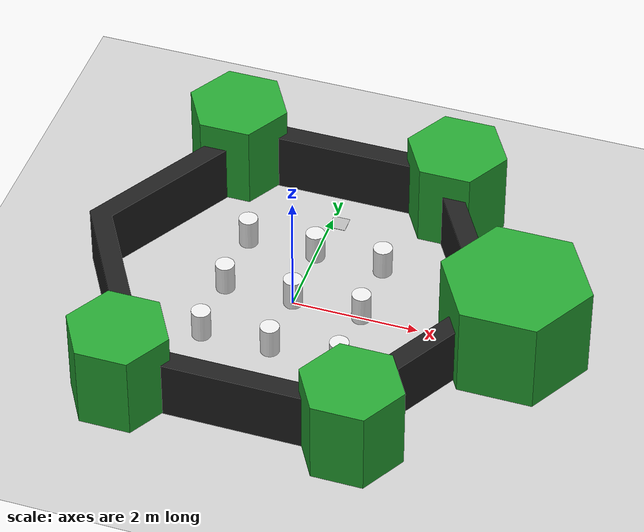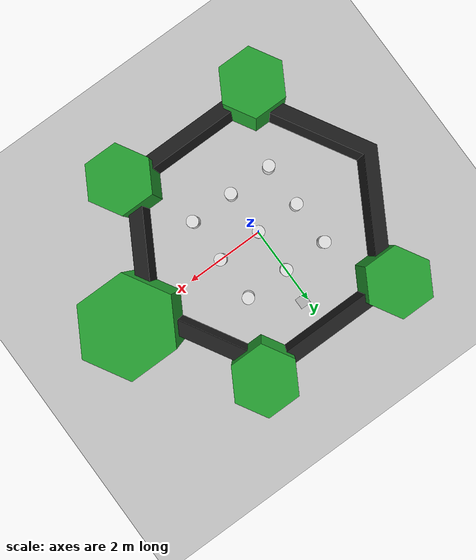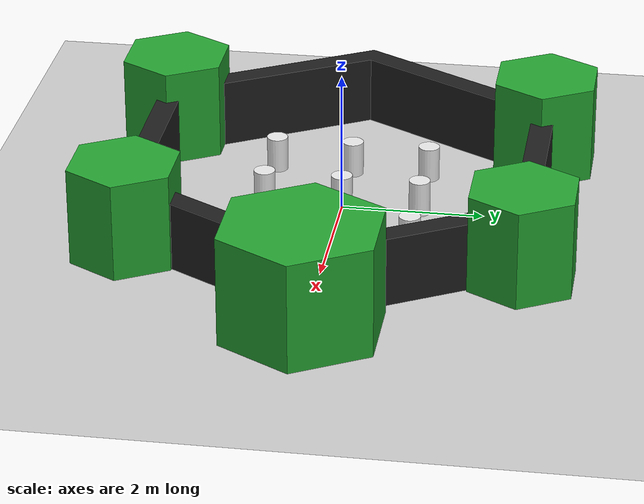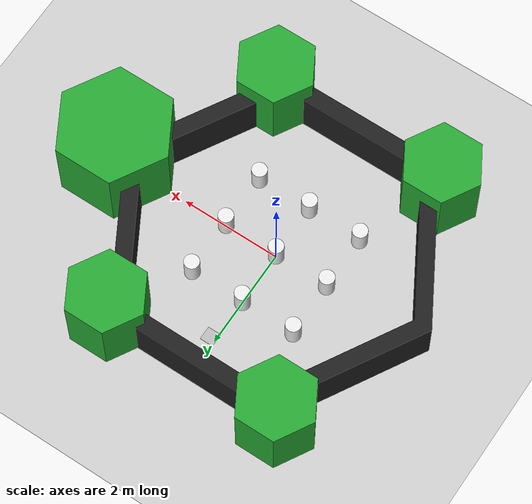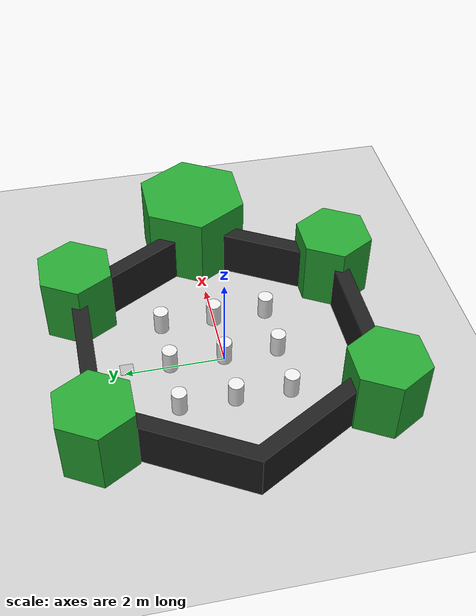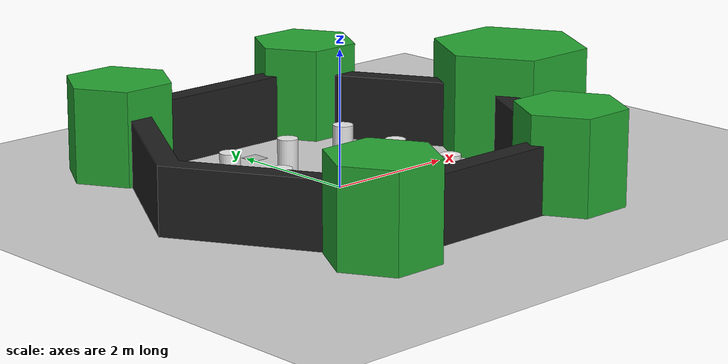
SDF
<sdf version="1.7">
 <world name="aruco_world">
  <light name="sun" type="directional">
   <pose>0 0 10 0 -0 0</pose>
   <diffuse>0.8 0.8 0.8 1</diffuse>
   <specular>0.2 0.2 0.2 1</specular>
   <attenuation>
    <range>1000</range>
    <constant>0.9</constant>
    <linear>0.01</linear>
    <quadratic>0.001</quadratic>
   </attenuation>
   <direction>-0.5 0.1 -0.9</direction>
   <spot><inner_angle>0</inner_angle><outer_angle>0</outer_angle><falloff>0</falloff></spot>
  </light>
  <model name="ground_plane">
   <static>1</static>
   <link name="link">
    <collision name="collision">
     <geometry><plane><normal>0 0 1</normal><size>100 100</size></plane></geometry>
     <surface>
      <contact><collide_bitmask>65535</collide_bitmask></contact>
      <friction><ode><mu>100</mu><mu2>50</mu2></ode></friction>
     </surface>
    </collision>
    <visual name="visual">
     <cast_shadows>0</cast_shadows>
     <geometry><plane><normal>0 0 1</normal><size>100 100</size></plane></geometry>
     <material>
      <script><uri>file://media/materials/scripts/gazebo.material</uri><name>Gazebo/Grey</name></script>
     </material>
    </visual>
   </link>
  </model>
  <physics type="ode">
   <real_time_update_rate>1000</real_time_update_rate>
   <max_step_size>0.001</max_step_size>
   <real_time_factor>1</real_time_factor>
   <ode>
    <solver>
     <type>quick</type>
     <iters>150</iters>
     <precon_iters>0</precon_iters>
     <sor>1.4</sor>
     <use_dynamic_moi_rescaling>1</use_dynamic_moi_rescaling>
    </solver>
    <constraints>
     <cfm>1e-05</cfm>
     <erp>0.2</erp>
     <contact_max_correcting_vel>2000</contact_max_correcting_vel>
     <contact_surface_layer>0.01</contact_surface_layer>
    </constraints>
   </ode>
  </physics>
  <model name="ros_symbol">
   <static>1</static>
   <link name="symbol">
    <collision name="one_one">
     <pose>-1.1 -1.1 0.25 0 -0 0</pose>
     <geometry><cylinder><radius>0.15</radius><length>0.5</length></cylinder></geometry>
    </collision>
    <visual name="one_one">
     <pose>-1.1 -1.1 0.25 0 -0 0</pose>
     <geometry><cylinder><radius>0.15</radius><length>0.5</length></cylinder></geometry>
     <material>
      <script><uri>file://media/materials/scripts/gazebo.material</uri><name>Gazebo/White</name></script>
     </material>
    </visual>
    <collision name="one_two">
     <pose>-1.1 0 0.25 0 -0 0</pose>
     <geometry><cylinder><radius>0.15</radius><length>0.5</length></cylinder></geometry>
    </collision>
    <visual name="one_two">
     <pose>-1.1 0 0.25 0 -0 0</pose>
     <geometry><cylinder><radius>0.15</radius><length>0.5</length></cylinder></geometry>
     <material>
      <script><uri>file://media/materials/scripts/gazebo.material</uri><name>Gazebo/White</name></script>
     </material>
    </visual>
    <collision name="one_three">
     <pose>-1.1 1.1 0.25 0 -0 0</pose>
     <geometry><cylinder><radius>0.15</radius><length>0.5</length></cylinder></geometry>
    </collision>
    <visual name="one_three">
     <pose>-1.1 1.1 0.25 0 -0 0</pose>
     <geometry><cylinder><radius>0.15</radius><length>0.5</length></cylinder></geometry>
     <material>
      <script><uri>file://media/materials/scripts/gazebo.material</uri><name>Gazebo/White</name></script>
     </material>
    </visual>
    <collision name="two_one">
     <pose>0 -1.1 0.25 0 -0 0</pose>
     <geometry><cylinder><radius>0.15</radius><length>0.5</length></cylinder></geometry>
    </collision>
    <visual name="two_one">
     <pose>0 -1.1 0.25 0 -0 0</pose>
     <geometry><cylinder><radius>0.15</radius><length>0.5</length></cylinder></geometry>
     <material>
      <script><uri>file://media/materials/scripts/gazebo.material</uri><name>Gazebo/White</name></script>
     </material>
    </visual>
    <collision name="two_two">
     <pose>0 0 0.25 0 -0 0</pose>
     <geometry><cylinder><radius>0.15</radius><length>0.5</length></cylinder></geometry>
    </collision>
    <visual name="two_two">
     <pose>0 0 0.25 0 -0 0</pose>
     <geometry><cylinder><radius>0.15</radius><length>0.5</length></cylinder></geometry>
     <material>
      <script><uri>file://media/materials/scripts/gazebo.material</uri><name>Gazebo/White</name></script>
     </material>
    </visual>
    <collision name="two_three">
     <pose>0 1.1 0.25 0 -0 0</pose>
     <geometry><cylinder><radius>0.15</radius><length>0.5</length></cylinder></geometry>
    </collision>
    <visual name="two_three">
     <pose>0 1.1 0.25 0 -0 0</pose>
     <geometry><cylinder><radius>0.15</radius><length>0.5</length></cylinder></geometry>
     <material>
      <script><uri>file://media/materials/scripts/gazebo.material</uri><name>Gazebo/White</name></script>
     </material>
    </visual>
    <collision name="three_one">
     <pose>1.1 -1.1 0.25 0 -0 0</pose>
     <geometry><cylinder><radius>0.15</radius><length>0.5</length></cylinder></geometry>
    </collision>
    <visual name="three_one">
     <pose>1.1 -1.1 0.25 0 -0 0</pose>
     <geometry><cylinder><radius>0.15</radius><length>0.5</length></cylinder></geometry>
     <material>
      <script><uri>file://media/materials/scripts/gazebo.material</uri><name>Gazebo/White</name></script>
     </material>
    </visual>
    <collision name="three_two">
     <pose>1.1 0 0.25 0 -0 0</pose>
     <geometry><cylinder><radius>0.15</radius><length>0.5</length></cylinder></geometry>
    </collision>
    <visual name="three_two">
     <pose>1.1 0 0.25 0 -0 0</pose>
     <geometry><cylinder><radius>0.15</radius><length>0.5</length></cylinder></geometry>
     <material>
      <script><uri>file://media/materials/scripts/gazebo.material</uri><name>Gazebo/White</name></script>
     </material>
    </visual>
    <collision name="three_three">
     <pose>1.1 1.1 0.25 0 -0 0</pose>
     <geometry><cylinder><radius>0.15</radius><length>0.5</length></cylinder></geometry>
    </collision>
    <visual name="three_three">
     <pose>1.1 1.1 0.25 0 -0 0</pose>
     <geometry><cylinder><radius>0.15</radius><length>0.5</length></cylinder></geometry>
     <material>
      <script><uri>file://media/materials/scripts/gazebo.material</uri><name>Gazebo/White</name></script>
     </material>
    </visual>
    <collision name="head">
     <pose>3.5 0 -0.5 0 -0 0</pose>
     <geometry>
      <mesh><uri>model://turtlebot3_world/meshes/hexagon.dae</uri><scale>0.8 0.8 0.8</scale></mesh>
     </geometry>
    </collision>
    <visual name="head">
     <pose>3.5 0 -0.5 0 -0 0</pose>
     <geometry>
      <mesh><uri>model://turtlebot3_world/meshes/hexagon.dae</uri><scale>0.8 0.8 0.8</scale></mesh>
     </geometry>
     <material>
      <script><uri>file://media/materials/scripts/gazebo.material</uri><name>Gazebo/Green</name></script>
     </material>
    </visual>
    <collision name="left_hand">
     <pose>1.8 2.7 0 0 -0 0</pose>
     <geometry>
      <mesh><uri>model://turtlebot3_world/meshes/hexagon.dae</uri><scale>0.55 0.55 0.55</scale></mesh>
     </geometry>
    </collision>
    <visual name="left_hand">
     <pose>1.8 2.7 0 0 -0 0</pose>
     <geometry>
      <mesh><uri>model://turtlebot3_world/meshes/hexagon.dae</uri><scale>0.55 0.55 0.55</scale></mesh>
     </geometry>
     <material>
      <script><uri>file://media/materials/scripts/gazebo.material</uri><name>Gazebo/Green</name></script>
     </material>
    </visual>
    <collision name="right_hand">
     <pose>1.8 -2.7 0 0 -0 0</pose>
     <geometry>
      <mesh><uri>model://turtlebot3_world/meshes/hexagon.dae</uri><scale>0.55 0.55 0.55</scale></mesh>
     </geometry>
    </collision>
    <visual name="right_hand">
     <pose>1.8 -2.7 0 0 -0 0</pose>
     <geometry>
      <mesh><uri>model://turtlebot3_world/meshes/hexagon.dae</uri><scale>0.55 0.55 0.55</scale></mesh>
     </geometry>
     <material>
      <script><uri>file://media/materials/scripts/gazebo.material</uri><name>Gazebo/Green</name></script>
     </material>
    </visual>
    <collision name="left_foot">
     <pose>-1.8 2.7 0 0 -0 0</pose>
     <geometry>
      <mesh><uri>model://turtlebot3_world/meshes/hexagon.dae</uri><scale>0.55 0.55 0.55</scale></mesh>
     </geometry>
    </collision>
    <visual name="left_foot">
     <pose>-1.8 2.7 0 0 -0 0</pose>
     <geometry>
      <mesh><uri>model://turtlebot3_world/meshes/hexagon.dae</uri><scale>0.55 0.55 0.55</scale></mesh>
     </geometry>
     <material>
      <script><uri>file://media/materials/scripts/gazebo.material</uri><name>Gazebo/Green</name></script>
     </material>
    </visual>
    <collision name="right_foot">
     <pose>-1.8 -2.7 0 0 -0 0</pose>
     <geometry>
      <mesh><uri>model://turtlebot3_world/meshes/hexagon.dae</uri><scale>0.55 0.55 0.55</scale></mesh>
     </geometry>
    </collision>
    <visual name="right_foot">
     <pose>-1.8 -2.7 0 0 -0 0</pose>
     <geometry>
      <mesh><uri>model://turtlebot3_world/meshes/hexagon.dae</uri><scale>0.55 0.55 0.55</scale></mesh>
     </geometry>
     <material>
      <script><uri>file://media/materials/scripts/gazebo.material</uri><name>Gazebo/Green</name></script>
     </material>
    </visual>
    <collision name="body">
     <pose>0 0 -0.3 0 0 -1.5708</pose>
     <geometry>
      <mesh><uri>model://turtlebot3_world/meshes/wall.dae</uri><scale>0.25 0.25 0.25</scale></mesh>
     </geometry>
    </collision>
    <visual name="body">
     <pose>0 0 -0.3 0 0 -1.5708</pose>
     <geometry>
      <mesh><uri>model://turtlebot3_world/meshes/wall.dae</uri><scale>0.25 0.25 0.25</scale></mesh>
     </geometry>
     <material>
      <script><uri>file://media/materials/scripts/gazebo.material</uri><name>Gazebo/FlatBlack</name></script>
     </material>
    </visual>
   </link>
  </model>
  <scene><ambient>0.4 0.4 0.4 1</ambient><background>0.7 0.7 0.7 1</background><shadows>1</shadows></scene>
  <gravity>0 0 -9.8</gravity>
  <magnetic_field>6e-06 2.3e-05 -4.2e-05</magnetic_field>
  <atmosphere type="adiabatic"/>
  <spherical_coordinates>
   <surface_model>EARTH_WGS84</surface_model>
   <latitude_deg>0</latitude_deg>
   <longitude_deg>0</longitude_deg>
   <elevation>0</elevation>
   <heading_deg>0</heading_deg>
  </spherical_coordinates>
  <model name="Marker0">
   <static>1</static>
   <link name="link">
    <visual name="visual">
     <geometry><mesh><uri>model://marker0/meshes/Marker0.dae</uri><scale>0.54 0.54 0.54</scale></mesh></geometry>
    </visual>
   </link>
   <pose>0.117279 1.82449 -0.001923 -4e-06 1.56227 1.5707</pose>
  </model>
  <light name="user_point_light_0" type="point">
   <pose>-0.294911 1.33105 1 0 -0 0</pose>
   <diffuse>0.5 0.5 0.5 1</diffuse>
   <specular>0.1 0.1 0.1 1</specular>
   <attenuation>
    <range>20</range>
    <constant>0.5</constant>
    <linear>0.01</linear>
    <quadratic>0.001</quadratic>
   </attenuation>
   <cast_shadows>0</cast_shadows>
   <direction>0 0 -1</direction>
   <spot><inner_angle>0</inner_angle><outer_angle>0</outer_angle><falloff>0</falloff></spot>
  </light>
 </world>
</sdf>
